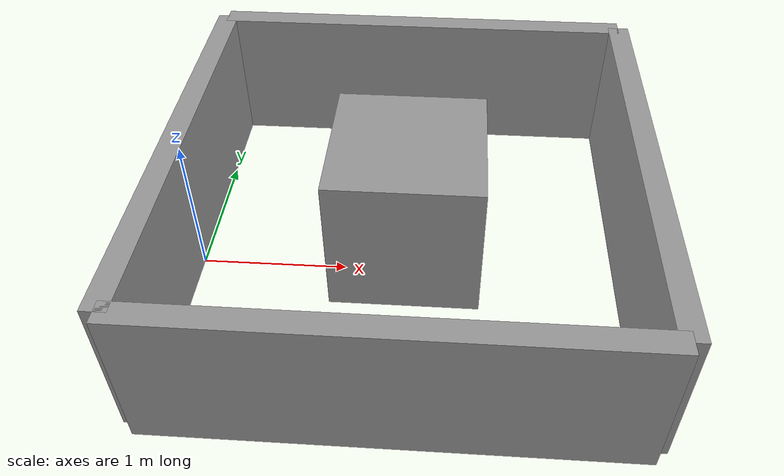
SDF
<?xml version='1.0'?>
<sdf version='1.5'>
  <model name='Maze Simple'>
    <pose frame=''>-0.076 0.178 0 0 -0 0</pose>
    <link name='Wall_0'>
      <collision name='Wall_0_Collision'>
        <geometry>
          <box>
            <size>3 0.15 1</size>
          </box>
        </geometry>
        <pose frame=''>0 0 0.5 0 -0 0</pose>
      </collision>
      <visual name='Wall_0_Visual'>
        <pose frame=''>0 0 0.5 0 -0 0</pose>
        <geometry>
          <box>
            <size>3 0.15 1</size>
          </box>
        </geometry>
        <material>
          <script>
            <uri>file://media/materials/scripts/gazebo.material</uri>
            <name>Gazebo/Grey</name>
          </script>
          <ambient>1 1 1 1</ambient>
        </material>
      </visual>
      <pose frame=''>0 0 0 0 0 -1.5708</pose>
    </link>
    <link name='Wall_1'>
      <collision name='Wall_1_Collision'>
        <geometry>
          <box>
            <size>3 0.15 1</size>
          </box>
        </geometry>
        <pose frame=''>0 0 0.5 0 -0 0</pose>
      </collision>
      <visual name='Wall_1_Visual'>
        <pose frame=''>0 0 0.5 0 -0 0</pose>
        <geometry>
          <box>
            <size>3 0.15 1</size>
          </box>
        </geometry>
        <material>
          <script>
            <uri>file://media/materials/scripts/gazebo.material</uri>
            <name>Gazebo/Grey</name>
          </script>
          <ambient>1 1 1 1</ambient>
        </material>
      </visual>
      <pose frame=''>1.5 -1.5 0 0 -0 0</pose>
    </link>
    <link name='Wall_2'>
      <collision name='Wall_2_Collision'>
        <geometry>
          <box>
            <size>3 0.15 1</size>
          </box>
        </geometry>
        <pose frame=''>0 0 0.5 0 -0 0</pose>
      </collision>
      <visual name='Wall_2_Visual'>
        <pose frame=''>0 0 0.5 0 -0 0</pose>
        <geometry>
          <box>
            <size>3 0.15 1</size>
          </box>
        </geometry>
        <material>
          <script>
            <uri>file://media/materials/scripts/gazebo.material</uri>
            <name>Gazebo/Grey</name>
          </script>
          <ambient>1 1 1 1</ambient>
        </material>
      </visual>
      <pose frame=''>1.5 1.5 0 0 -0 0</pose>
    </link>
    <link name='Wall_3'>
      <collision name='Wall_3_Collision'>
        <geometry>
          <box>
            <size>3 0.15 1</size>
          </box>
        </geometry>
        <pose frame=''>0 0 0.5 0 -0 0</pose>
      </collision>
      <visual name='Wall_3_Visual'>
        <pose frame=''>0 0 0.5 0 -0 0</pose>
        <geometry>
          <box>
            <size>3 0.15 1</size>
          </box>
        </geometry>
        <material>
          <script>
            <uri>file://media/materials/scripts/gazebo.material</uri>
            <name>Gazebo/Grey</name>
          </script>
          <ambient>1 1 1 1</ambient>
        </material>
      </visual>
      <pose frame=''>3 0 0 0 0 -1.5708</pose>
    </link>
    <link name='Center'>
      <collision name='Center_Collision'>
        <geometry>
          <box>
            <size>1 1 1</size>
          </box>
        </geometry>
        <pose frame=''>0 0 0.5 0 -0 0</pose>
      </collision>
      <visual name='Center_Visual'>
        <pose frame=''>0 0 0.5 0 -0 0</pose>
        <geometry>
          <box>
            <size>1 1 1</size>
          </box>
        </geometry>
        <material>
          <script>
            <uri>file://media/materials/scripts/gazebo.material</uri>
            <name>Gazebo/Grey</name>
          </script>
          <ambient>1 1 1 1</ambient>
        </material>
      </visual>
      <pose frame=''>1.5 0 0 0 0 -1.5708</pose>
    </link>
    <static>1</static>
  </model>
</sdf>
